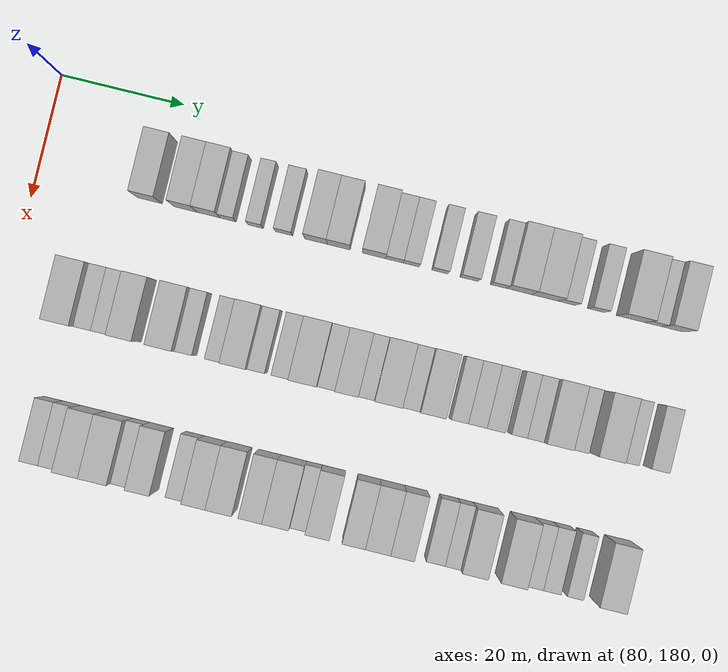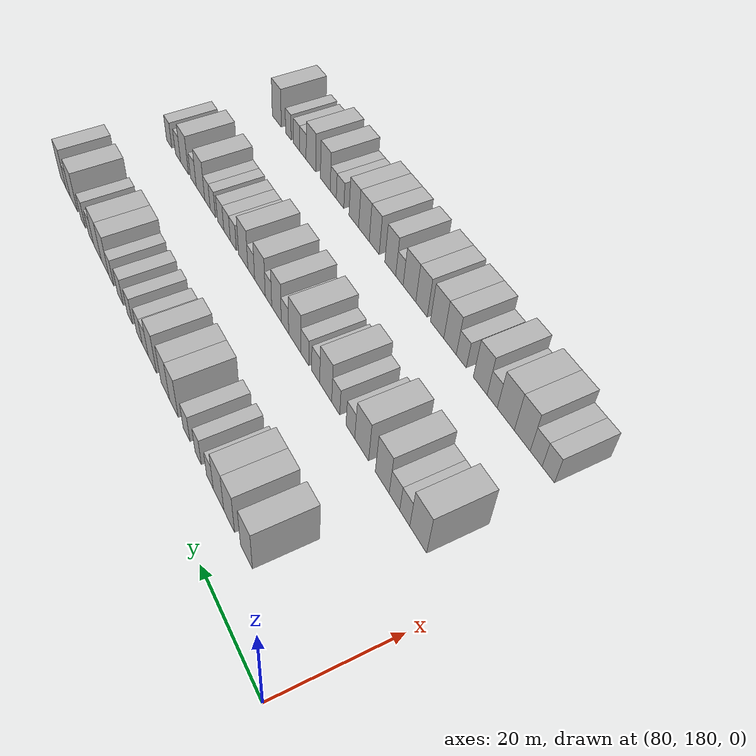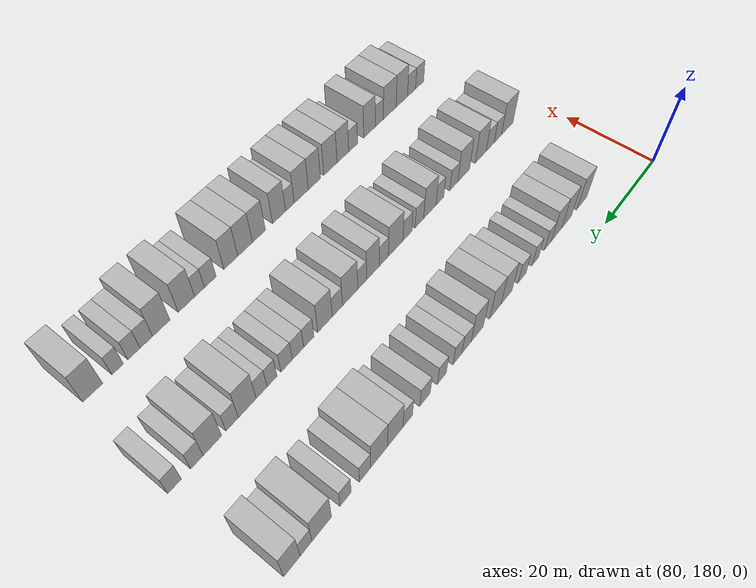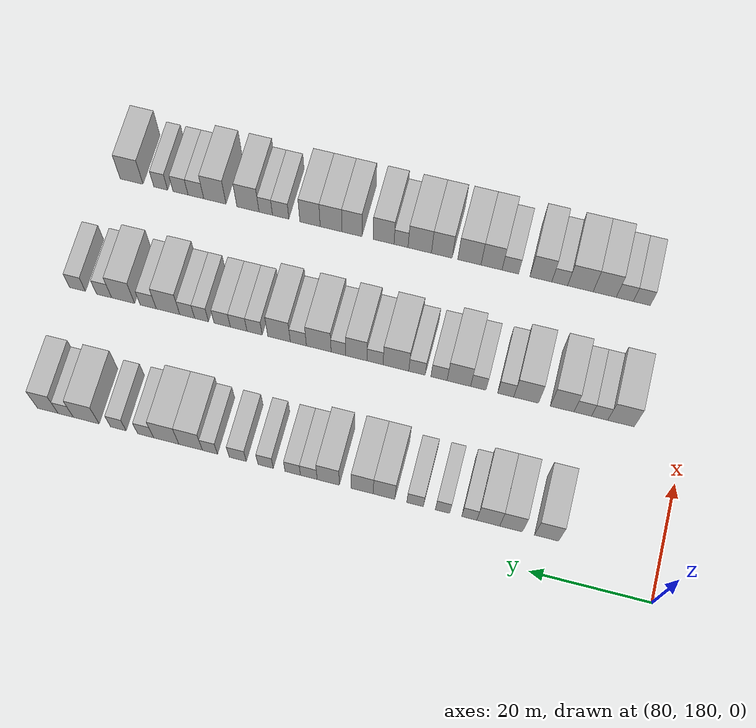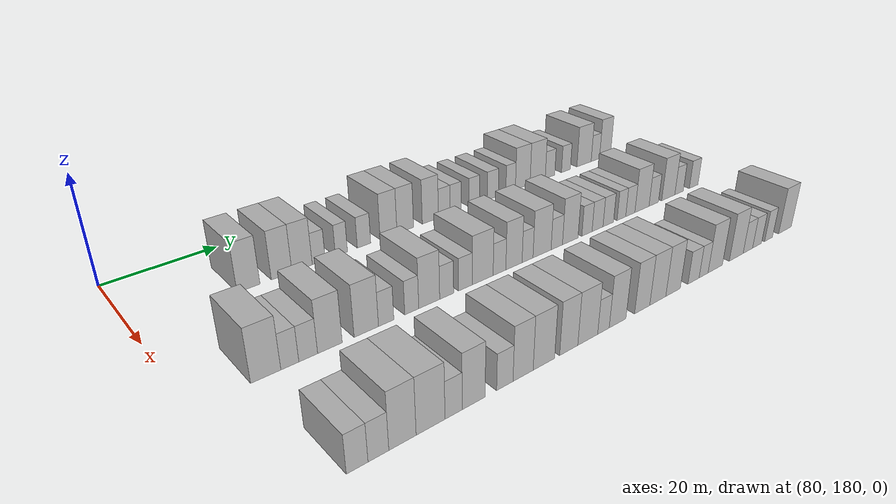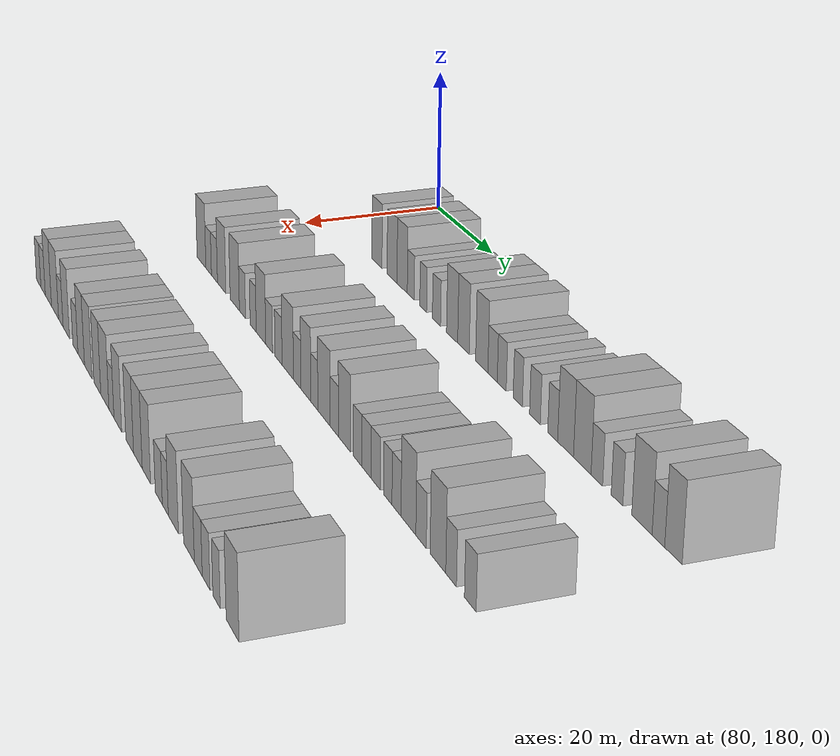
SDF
<sdf version="1.6">
 <world name="default">
  <model name="building_725">
   <static>1</static>
   <pose>91.0000 198.4446 0 0.000000 0.000000 0.000000</pose>
   <link name="link">
    <pose>0 0 4.50 0 0 0</pose>
    <collision name="collision"><geometry><box><size>10.0000 3.9656 9.0000</size></box></geometry></collision>
    <visual name="visual">
     <cast_shadows>0</cast_shadows>
     <geometry><box><size>10.0000 3.9656 9.0000</size></box></geometry>
     <material>
      <script>
       <uri>model://HANNAS_wall/materials/scripts</uri>
       <uri>model://HANNAS_wall/materials/textures</uri>
       <name>vrc/HANNAS_wall</name>
      </script>
     </material>
    </visual>
   </link>
  </model>
  <model name="building_726">
   <static>1</static>
   <pose>91.0000 204.3046 0 0.000000 0.000000 0.000000</pose>
   <link name="link">
    <pose>0 0 4.50 0 0 0</pose>
    <collision name="collision"><geometry><box><size>10.0000 3.7544 9.0000</size></box></geometry></collision>
    <visual name="visual">
     <cast_shadows>0</cast_shadows>
     <geometry><box><size>10.0000 3.7544 9.0000</size></box></geometry>
     <material>
      <script>
       <uri>model://HANNAS_wall/materials/scripts</uri>
       <uri>model://HANNAS_wall/materials/textures</uri>
       <name>vrc/HANNAS_wall</name>
      </script>
     </material>
    </visual>
   </link>
  </model>
  <model name="building_727">
   <static>1</static>
   <pose>91.0000 208.0827 0 0.000000 0.000000 0.000000</pose>
   <link name="link">
    <pose>0 0 4.50 0 0 0</pose>
    <collision name="collision"><geometry><box><size>10.0000 3.8017 9.0000</size></box></geometry></collision>
    <visual name="visual">
     <cast_shadows>0</cast_shadows>
     <geometry><box><size>10.0000 3.8017 9.0000</size></box></geometry>
     <material>
      <script>
       <uri>model://HANNAS_wall/materials/scripts</uri>
       <uri>model://HANNAS_wall/materials/textures</uri>
       <name>vrc/HANNAS_wall</name>
      </script>
     </material>
    </visual>
   </link>
  </model>
  <model name="building_728">
   <static>1</static>
   <pose>91.0000 211.2401 0 0.000000 0.000000 0.000000</pose>
   <link name="link">
    <pose>0 0 3.00 0 0 0</pose>
    <collision name="collision"><geometry><box><size>10.0000 2.5131 6.0000</size></box></geometry></collision>
    <visual name="visual">
     <cast_shadows>0</cast_shadows>
     <geometry><box><size>10.0000 2.5131 6.0000</size></box></geometry>
     <material>
      <script>
       <uri>model://HANNAS_wall/materials/scripts</uri>
       <uri>model://HANNAS_wall/materials/textures</uri>
       <name>vrc/HANNAS_wall</name>
      </script>
     </material>
    </visual>
   </link>
  </model>
  <model name="building_729">
   <static>1</static>
   <pose>91.0000 215.7001 0 0.000000 0.000000 0.000000</pose>
   <link name="link">
    <pose>0 0 3.00 0 0 0</pose>
    <collision name="collision"><geometry><box><size>10.0000 2.4068 6.0000</size></box></geometry></collision>
    <visual name="visual">
     <cast_shadows>0</cast_shadows>
     <geometry><box><size>10.0000 2.4068 6.0000</size></box></geometry>
     <material>
      <script>
       <uri>model://HANNAS_wall/materials/scripts</uri>
       <uri>model://HANNAS_wall/materials/textures</uri>
       <name>vrc/HANNAS_wall</name>
      </script>
     </material>
    </visual>
   </link>
  </model>
  <model name="building_730">
   <static>1</static>
   <pose>91.0000 220.2960 0 0.000000 0.000000 0.000000</pose>
   <link name="link">
    <pose>0 0 3.00 0 0 0</pose>
    <collision name="collision"><geometry><box><size>10.0000 2.7852 6.0000</size></box></geometry></collision>
    <visual name="visual">
     <cast_shadows>0</cast_shadows>
     <geometry><box><size>10.0000 2.7852 6.0000</size></box></geometry>
     <material>
      <script>
       <uri>model://HANNAS_wall/materials/scripts</uri>
       <uri>model://HANNAS_wall/materials/textures</uri>
       <name>vrc/HANNAS_wall</name>
      </script>
     </material>
    </visual>
   </link>
  </model>
  <model name="building_731">
   <static>1</static>
   <pose>91.0000 225.5138 0 0.000000 0.000000 0.000000</pose>
   <link name="link">
    <pose>0 0 4.50 0 0 0</pose>
    <collision name="collision"><geometry><box><size>10.0000 3.6503 9.0000</size></box></geometry></collision>
    <visual name="visual">
     <cast_shadows>0</cast_shadows>
     <geometry><box><size>10.0000 3.6503 9.0000</size></box></geometry>
     <material>
      <script>
       <uri>model://HANNAS_wall/materials/scripts</uri>
       <uri>model://HANNAS_wall/materials/textures</uri>
       <name>vrc/HANNAS_wall</name>
      </script>
     </material>
    </visual>
   </link>
  </model>
  <model name="building_732">
   <static>1</static>
   <pose>91.0000 229.1886 0 0.000000 0.000000 0.000000</pose>
   <link name="link">
    <pose>0 0 4.50 0 0 0</pose>
    <collision name="collision"><geometry><box><size>10.0000 3.6993 9.0000</size></box></geometry></collision>
    <visual name="visual">
     <cast_shadows>0</cast_shadows>
     <geometry><box><size>10.0000 3.6993 9.0000</size></box></geometry>
     <material>
      <script>
       <uri>model://HANNAS_wall/materials/scripts</uri>
       <uri>model://HANNAS_wall/materials/textures</uri>
       <name>vrc/HANNAS_wall</name>
      </script>
     </material>
    </visual>
   </link>
  </model>
  <model name="building_733">
   <static>1</static>
   <pose>91.0000 234.9215 0 0.000000 0.000000 0.000000</pose>
   <link name="link">
    <pose>0 0 4.50 0 0 0</pose>
    <collision name="collision"><geometry><box><size>10.0000 3.7665 9.0000</size></box></geometry></collision>
    <visual name="visual">
     <cast_shadows>0</cast_shadows>
     <geometry><box><size>10.0000 3.7665 9.0000</size></box></geometry>
     <material>
      <script>
       <uri>model://HANNAS_wall/materials/scripts</uri>
       <uri>model://HANNAS_wall/materials/textures</uri>
       <name>vrc/HANNAS_wall</name>
      </script>
     </material>
    </visual>
   </link>
  </model>
  <model name="building_734">
   <static>1</static>
   <pose>91.0000 238.2149 0 0.000000 0.000000 0.000000</pose>
   <link name="link">
    <pose>0 0 3.00 0 0 0</pose>
    <collision name="collision"><geometry><box><size>10.0000 2.8202 6.0000</size></box></geometry></collision>
    <visual name="visual">
     <cast_shadows>0</cast_shadows>
     <geometry><box><size>10.0000 2.8202 6.0000</size></box></geometry>
     <material>
      <script>
       <uri>model://HANNAS_wall/materials/scripts</uri>
       <uri>model://HANNAS_wall/materials/textures</uri>
       <name>vrc/HANNAS_wall</name>
      </script>
     </material>
    </visual>
   </link>
  </model>
  <model name="building_735">
   <static>1</static>
   <pose>91.0000 240.9437 0 0.000000 0.000000 0.000000</pose>
   <link name="link">
    <pose>0 0 3.00 0 0 0</pose>
    <collision name="collision"><geometry><box><size>10.0000 2.6375 6.0000</size></box></geometry></collision>
    <visual name="visual">
     <cast_shadows>0</cast_shadows>
     <geometry><box><size>10.0000 2.6375 6.0000</size></box></geometry>
     <material>
      <script>
       <uri>model://HANNAS_wall/materials/scripts</uri>
       <uri>model://HANNAS_wall/materials/textures</uri>
       <name>vrc/HANNAS_wall</name>
      </script>
     </material>
    </visual>
   </link>
  </model>
  <model name="building_736">
   <static>1</static>
   <pose>91.0000 245.5686 0 0.000000 0.000000 0.000000</pose>
   <link name="link">
    <pose>0 0 3.00 0 0 0</pose>
    <collision name="collision"><geometry><box><size>10.0000 2.6123 6.0000</size></box></geometry></collision>
    <visual name="visual">
     <cast_shadows>0</cast_shadows>
     <geometry><box><size>10.0000 2.6123 6.0000</size></box></geometry>
     <material>
      <script>
       <uri>model://HANNAS_wall/materials/scripts</uri>
       <uri>model://HANNAS_wall/materials/textures</uri>
       <name>vrc/HANNAS_wall</name>
      </script>
     </material>
    </visual>
   </link>
  </model>
  <model name="building_737">
   <static>1</static>
   <pose>91.0000 250.3436 0 0.000000 0.000000 0.000000</pose>
   <link name="link">
    <pose>0 0 3.00 0 0 0</pose>
    <collision name="collision"><geometry><box><size>10.0000 2.9376 6.0000</size></box></geometry></collision>
    <visual name="visual">
     <cast_shadows>0</cast_shadows>
     <geometry><box><size>10.0000 2.9376 6.0000</size></box></geometry>
     <material>
      <script>
       <uri>model://HANNAS_wall/materials/scripts</uri>
       <uri>model://HANNAS_wall/materials/textures</uri>
       <name>vrc/HANNAS_wall</name>
      </script>
     </material>
    </visual>
   </link>
  </model>
  <model name="building_738">
   <static>1</static>
   <pose>91.0000 255.1089 0 0.000000 0.000000 0.000000</pose>
   <link name="link">
    <pose>0 0 3.00 0 0 0</pose>
    <collision name="collision"><geometry><box><size>10.0000 2.5930 6.0000</size></box></geometry></collision>
    <visual name="visual">
     <cast_shadows>0</cast_shadows>
     <geometry><box><size>10.0000 2.5930 6.0000</size></box></geometry>
     <material>
      <script>
       <uri>model://HANNAS_wall/materials/scripts</uri>
       <uri>model://HANNAS_wall/materials/textures</uri>
       <name>vrc/HANNAS_wall</name>
      </script>
     </material>
    </visual>
   </link>
  </model>
  <model name="building_739">
   <static>1</static>
   <pose>91.0000 258.4398 0 0.000000 0.000000 0.000000</pose>
   <link name="link">
    <pose>0 0 4.50 0 0 0</pose>
    <collision name="collision"><geometry><box><size>10.0000 4.0688 9.0000</size></box></geometry></collision>
    <visual name="visual">
     <cast_shadows>0</cast_shadows>
     <geometry><box><size>10.0000 4.0688 9.0000</size></box></geometry>
     <material>
      <script>
       <uri>model://HANNAS_wall/materials/scripts</uri>
       <uri>model://HANNAS_wall/materials/textures</uri>
       <name>vrc/HANNAS_wall</name>
      </script>
     </material>
    </visual>
   </link>
  </model>
  <model name="building_740">
   <static>1</static>
   <pose>91.0000 262.6507 0 0.000000 0.000000 0.000000</pose>
   <link name="link">
    <pose>0 0 4.50 0 0 0</pose>
    <collision name="collision"><geometry><box><size>10.0000 4.3530 9.0000</size></box></geometry></collision>
    <visual name="visual">
     <cast_shadows>0</cast_shadows>
     <geometry><box><size>10.0000 4.3530 9.0000</size></box></geometry>
     <material>
      <script>
       <uri>model://HANNAS_wall/materials/scripts</uri>
       <uri>model://HANNAS_wall/materials/textures</uri>
       <name>vrc/HANNAS_wall</name>
      </script>
     </material>
    </visual>
   </link>
  </model>
  <model name="building_741">
   <static>1</static>
   <pose>91.0000 266.2208 0 0.000000 0.000000 0.000000</pose>
   <link name="link">
    <pose>0 0 3.00 0 0 0</pose>
    <collision name="collision"><geometry><box><size>10.0000 2.7873 6.0000</size></box></geometry></collision>
    <visual name="visual">
     <cast_shadows>0</cast_shadows>
     <geometry><box><size>10.0000 2.7873 6.0000</size></box></geometry>
     <material>
      <script>
       <uri>model://HANNAS_wall/materials/scripts</uri>
       <uri>model://HANNAS_wall/materials/textures</uri>
       <name>vrc/HANNAS_wall</name>
      </script>
     </material>
    </visual>
   </link>
  </model>
  <model name="building_742">
   <static>1</static>
   <pose>91.0000 270.9695 0 0.000000 0.000000 0.000000</pose>
   <link name="link">
    <pose>0 0 3.00 0 0 0</pose>
    <collision name="collision"><geometry><box><size>10.0000 2.7102 6.0000</size></box></geometry></collision>
    <visual name="visual">
     <cast_shadows>0</cast_shadows>
     <geometry><box><size>10.0000 2.7102 6.0000</size></box></geometry>
     <material>
      <script>
       <uri>model://HANNAS_wall/materials/scripts</uri>
       <uri>model://HANNAS_wall/materials/textures</uri>
       <name>vrc/HANNAS_wall</name>
      </script>
     </material>
    </visual>
   </link>
  </model>
  <model name="building_743">
   <static>1</static>
   <pose>91.0000 276.5693 0 0.000000 0.000000 0.000000</pose>
   <link name="link">
    <pose>0 0 4.50 0 0 0</pose>
    <collision name="collision"><geometry><box><size>10.0000 4.4894 9.0000</size></box></geometry></collision>
    <visual name="visual">
     <cast_shadows>0</cast_shadows>
     <geometry><box><size>10.0000 4.4894 9.0000</size></box></geometry>
     <material>
      <script>
       <uri>model://HANNAS_wall/materials/scripts</uri>
       <uri>model://HANNAS_wall/materials/textures</uri>
       <name>vrc/HANNAS_wall</name>
      </script>
     </material>
    </visual>
   </link>
  </model>
  <model name="building_744">
   <static>1</static>
   <pose>91.0000 280.1538 0 0.000000 0.000000 0.000000</pose>
   <link name="link">
    <pose>0 0 3.00 0 0 0</pose>
    <collision name="collision"><geometry><box><size>10.0000 2.6796 6.0000</size></box></geometry></collision>
    <visual name="visual">
     <cast_shadows>0</cast_shadows>
     <geometry><box><size>10.0000 2.6796 6.0000</size></box></geometry>
     <material>
      <script>
       <uri>model://HANNAS_wall/materials/scripts</uri>
       <uri>model://HANNAS_wall/materials/textures</uri>
       <name>vrc/HANNAS_wall</name>
      </script>
     </material>
    </visual>
   </link>
  </model>
  <model name="building_745">
   <static>1</static>
   <pose>91.0000 283.3071 0 0.000000 0.000000 0.000000</pose>
   <link name="link">
    <pose>0 0 4.50 0 0 0</pose>
    <collision name="collision"><geometry><box><size>10.0000 3.6269 9.0000</size></box></geometry></collision>
    <visual name="visual">
     <cast_shadows>0</cast_shadows>
     <geometry><box><size>10.0000 3.6269 9.0000</size></box></geometry>
     <material>
      <script>
       <uri>model://HANNAS_wall/materials/scripts</uri>
       <uri>model://HANNAS_wall/materials/textures</uri>
       <name>vrc/HANNAS_wall</name>
      </script>
     </material>
    </visual>
   </link>
  </model>
  <model name="building_904">
   <static>1</static>
   <pose>113.0000 190.4976 0 0.000000 0.000000 0.000000</pose>
   <link name="link">
    <pose>0 0 4.50 0 0 0</pose>
    <collision name="collision"><geometry><box><size>10.0000 4.4730 9.0000</size></box></geometry></collision>
    <visual name="visual">
     <cast_shadows>0</cast_shadows>
     <geometry><box><size>10.0000 4.4730 9.0000</size></box></geometry>
     <material>
      <script>
       <uri>model://HANNAS_wall/materials/scripts</uri>
       <uri>model://HANNAS_wall/materials/textures</uri>
       <name>vrc/HANNAS_wall</name>
      </script>
     </material>
    </visual>
   </link>
  </model>
  <model name="building_905">
   <static>1</static>
   <pose>113.0000 194.1137 0 0.000000 0.000000 0.000000</pose>
   <link name="link">
    <pose>0 0 3.00 0 0 0</pose>
    <collision name="collision"><geometry><box><size>10.0000 2.7592 6.0000</size></box></geometry></collision>
    <visual name="visual">
     <cast_shadows>0</cast_shadows>
     <geometry><box><size>10.0000 2.7592 6.0000</size></box></geometry>
     <material>
      <script>
       <uri>model://HANNAS_wall/materials/scripts</uri>
       <uri>model://HANNAS_wall/materials/textures</uri>
       <name>vrc/HANNAS_wall</name>
      </script>
     </material>
    </visual>
   </link>
  </model>
  <model name="building_906">
   <static>1</static>
   <pose>113.0000 196.9742 0 0.000000 0.000000 0.000000</pose>
   <link name="link">
    <pose>0 0 3.00 0 0 0</pose>
    <collision name="collision"><geometry><box><size>10.0000 2.9618 6.0000</size></box></geometry></collision>
    <visual name="visual">
     <cast_shadows>0</cast_shadows>
     <geometry><box><size>10.0000 2.9618 6.0000</size></box></geometry>
     <material>
      <script>
       <uri>model://HANNAS_wall/materials/scripts</uri>
       <uri>model://HANNAS_wall/materials/textures</uri>
       <name>vrc/HANNAS_wall</name>
      </script>
     </material>
    </visual>
   </link>
  </model>
  <model name="building_907">
   <static>1</static>
   <pose>113.0000 200.4675 0 0.000000 0.000000 0.000000</pose>
   <link name="link">
    <pose>0 0 4.50 0 0 0</pose>
    <collision name="collision"><geometry><box><size>10.0000 4.0248 9.0000</size></box></geometry></collision>
    <visual name="visual">
     <cast_shadows>0</cast_shadows>
     <geometry><box><size>10.0000 4.0248 9.0000</size></box></geometry>
     <material>
      <script>
       <uri>model://HANNAS_wall/materials/scripts</uri>
       <uri>model://HANNAS_wall/materials/textures</uri>
       <name>vrc/HANNAS_wall</name>
      </script>
     </material>
    </visual>
   </link>
  </model>
  <model name="building_908">
   <static>1</static>
   <pose>113.0000 206.6000 0 0.000000 0.000000 0.000000</pose>
   <link name="link">
    <pose>0 0 4.50 0 0 0</pose>
    <collision name="collision"><geometry><box><size>10.0000 4.2402 9.0000</size></box></geometry></collision>
    <visual name="visual">
     <cast_shadows>0</cast_shadows>
     <geometry><box><size>10.0000 4.2402 9.0000</size></box></geometry>
     <material>
      <script>
       <uri>model://HANNAS_wall/materials/scripts</uri>
       <uri>model://HANNAS_wall/materials/textures</uri>
       <name>vrc/HANNAS_wall</name>
      </script>
     </material>
    </visual>
   </link>
  </model>
  <model name="building_909">
   <static>1</static>
   <pose>113.0000 210.0994 0 0.000000 0.000000 0.000000</pose>
   <link name="link">
    <pose>0 0 3.00 0 0 0</pose>
    <collision name="collision"><geometry><box><size>10.0000 2.7586 6.0000</size></box></geometry></collision>
    <visual name="visual">
     <cast_shadows>0</cast_shadows>
     <geometry><box><size>10.0000 2.7586 6.0000</size></box></geometry>
     <material>
      <script>
       <uri>model://HANNAS_wall/materials/scripts</uri>
       <uri>model://HANNAS_wall/materials/textures</uri>
       <name>vrc/HANNAS_wall</name>
      </script>
     </material>
    </visual>
   </link>
  </model>
  <model name="building_910">
   <static>1</static>
   <pose>113.0000 214.8007 0 0.000000 0.000000 0.000000</pose>
   <link name="link">
    <pose>0 0 3.00 0 0 0</pose>
    <collision name="collision"><geometry><box><size>10.0000 2.6440 6.0000</size></box></geometry></collision>
    <visual name="visual">
     <cast_shadows>0</cast_shadows>
     <geometry><box><size>10.0000 2.6440 6.0000</size></box></geometry>
     <material>
      <script>
       <uri>model://HANNAS_wall/materials/scripts</uri>
       <uri>model://HANNAS_wall/materials/textures</uri>
       <name>vrc/HANNAS_wall</name>
      </script>
     </material>
    </visual>
   </link>
  </model>
  <model name="building_911">
   <static>1</static>
   <pose>113.0000 218.1511 0 0.000000 0.000000 0.000000</pose>
   <link name="link">
    <pose>0 0 4.50 0 0 0</pose>
    <collision name="collision"><geometry><box><size>10.0000 4.0568 9.0000</size></box></geometry></collision>
    <visual name="visual">
     <cast_shadows>0</cast_shadows>
     <geometry><box><size>10.0000 4.0568 9.0000</size></box></geometry>
     <material>
      <script>
       <uri>model://HANNAS_wall/materials/scripts</uri>
       <uri>model://HANNAS_wall/materials/textures</uri>
       <name>vrc/HANNAS_wall</name>
      </script>
     </material>
    </visual>
   </link>
  </model>
  <model name="building_912">
   <static>1</static>
   <pose>113.0000 221.5752 0 0.000000 0.000000 0.000000</pose>
   <link name="link">
    <pose>0 0 3.00 0 0 0</pose>
    <collision name="collision"><geometry><box><size>10.0000 2.7915 6.0000</size></box></geometry></collision>
    <visual name="visual">
     <cast_shadows>0</cast_shadows>
     <geometry><box><size>10.0000 2.7915 6.0000</size></box></geometry>
     <material>
      <script>
       <uri>model://HANNAS_wall/materials/scripts</uri>
       <uri>model://HANNAS_wall/materials/textures</uri>
       <name>vrc/HANNAS_wall</name>
      </script>
     </material>
    </visual>
   </link>
  </model>
  <model name="building_913">
   <static>1</static>
   <pose>113.0000 225.3942 0 0.000000 0.000000 0.000000</pose>
   <link name="link">
    <pose>0 0 3.00 0 0 0</pose>
    <collision name="collision"><geometry><box><size>10.0000 2.8465 6.0000</size></box></geometry></collision>
    <visual name="visual">
     <cast_shadows>0</cast_shadows>
     <geometry><box><size>10.0000 2.8465 6.0000</size></box></geometry>
     <material>
      <script>
       <uri>model://HANNAS_wall/materials/scripts</uri>
       <uri>model://HANNAS_wall/materials/textures</uri>
       <name>vrc/HANNAS_wall</name>
      </script>
     </material>
    </visual>
   </link>
  </model>
  <model name="building_914">
   <static>1</static>
   <pose>113.0000 229.0496 0 0.000000 0.000000 0.000000</pose>
   <link name="link">
    <pose>0 0 4.50 0 0 0</pose>
    <collision name="collision"><geometry><box><size>10.0000 4.4642 9.0000</size></box></geometry></collision>
    <visual name="visual">
     <cast_shadows>0</cast_shadows>
     <geometry><box><size>10.0000 4.4642 9.0000</size></box></geometry>
     <material>
      <script>
       <uri>model://HANNAS_wall/materials/scripts</uri>
       <uri>model://HANNAS_wall/materials/textures</uri>
       <name>vrc/HANNAS_wall</name>
      </script>
     </material>
    </visual>
   </link>
  </model>
  <model name="building_915">
   <static>1</static>
   <pose>113.0000 232.6850 0 0.000000 0.000000 0.000000</pose>
   <link name="link">
    <pose>0 0 3.00 0 0 0</pose>
    <collision name="collision"><geometry><box><size>10.0000 2.8066 6.0000</size></box></geometry></collision>
    <visual name="visual">
     <cast_shadows>0</cast_shadows>
     <geometry><box><size>10.0000 2.8066 6.0000</size></box></geometry>
     <material>
      <script>
       <uri>model://HANNAS_wall/materials/scripts</uri>
       <uri>model://HANNAS_wall/materials/textures</uri>
       <name>vrc/HANNAS_wall</name>
      </script>
     </material>
    </visual>
   </link>
  </model>
  <model name="building_916">
   <static>1</static>
   <pose>113.0000 235.9343 0 0.000000 0.000000 0.000000</pose>
   <link name="link">
    <pose>0 0 4.50 0 0 0</pose>
    <collision name="collision"><geometry><box><size>10.0000 3.6921 9.0000</size></box></geometry></collision>
    <visual name="visual">
     <cast_shadows>0</cast_shadows>
     <geometry><box><size>10.0000 3.6921 9.0000</size></box></geometry>
     <material>
      <script>
       <uri>model://HANNAS_wall/materials/scripts</uri>
       <uri>model://HANNAS_wall/materials/textures</uri>
       <name>vrc/HANNAS_wall</name>
      </script>
     </material>
    </visual>
   </link>
  </model>
  <model name="building_917">
   <static>1</static>
   <pose>113.0000 239.0591 0 0.000000 0.000000 0.000000</pose>
   <link name="link">
    <pose>0 0 3.00 0 0 0</pose>
    <collision name="collision"><geometry><box><size>10.0000 2.5575 6.0000</size></box></geometry></collision>
    <visual name="visual">
     <cast_shadows>0</cast_shadows>
     <geometry><box><size>10.0000 2.5575 6.0000</size></box></geometry>
     <material>
      <script>
       <uri>model://HANNAS_wall/materials/scripts</uri>
       <uri>model://HANNAS_wall/materials/textures</uri>
       <name>vrc/HANNAS_wall</name>
      </script>
     </material>
    </visual>
   </link>
  </model>
  <model name="building_918">
   <static>1</static>
   <pose>113.0000 242.5063 0 0.000000 0.000000 0.000000</pose>
   <link name="link">
    <pose>0 0 4.50 0 0 0</pose>
    <collision name="collision"><geometry><box><size>10.0000 4.3369 9.0000</size></box></geometry></collision>
    <visual name="visual">
     <cast_shadows>0</cast_shadows>
     <geometry><box><size>10.0000 4.3369 9.0000</size></box></geometry>
     <material>
      <script>
       <uri>model://HANNAS_wall/materials/scripts</uri>
       <uri>model://HANNAS_wall/materials/textures</uri>
       <name>vrc/HANNAS_wall</name>
      </script>
     </material>
    </visual>
   </link>
  </model>
  <model name="building_919">
   <static>1</static>
   <pose>113.0000 246.0868 0 0.000000 0.000000 0.000000</pose>
   <link name="link">
    <pose>0 0 3.00 0 0 0</pose>
    <collision name="collision"><geometry><box><size>10.0000 2.8242 6.0000</size></box></geometry></collision>
    <visual name="visual">
     <cast_shadows>0</cast_shadows>
     <geometry><box><size>10.0000 2.8242 6.0000</size></box></geometry>
     <material>
      <script>
       <uri>model://HANNAS_wall/materials/scripts</uri>
       <uri>model://HANNAS_wall/materials/textures</uri>
       <name>vrc/HANNAS_wall</name>
      </script>
     </material>
    </visual>
   </link>
  </model>
  <model name="building_920">
   <static>1</static>
   <pose>113.0000 249.4796 0 0.000000 0.000000 0.000000</pose>
   <link name="link">
    <pose>0 0 4.50 0 0 0</pose>
    <collision name="collision"><geometry><box><size>10.0000 3.9615 9.0000</size></box></geometry></collision>
    <visual name="visual">
     <cast_shadows>0</cast_shadows>
     <geometry><box><size>10.0000 3.9615 9.0000</size></box></geometry>
     <material>
      <script>
       <uri>model://HANNAS_wall/materials/scripts</uri>
       <uri>model://HANNAS_wall/materials/textures</uri>
       <name>vrc/HANNAS_wall</name>
      </script>
     </material>
    </visual>
   </link>
  </model>
  <model name="building_921">
   <static>1</static>
   <pose>113.0000 253.8057 0 0.000000 0.000000 0.000000</pose>
   <link name="link">
    <pose>0 0 3.00 0 0 0</pose>
    <collision name="collision"><geometry><box><size>10.0000 2.6906 6.0000</size></box></geometry></collision>
    <visual name="visual">
     <cast_shadows>0</cast_shadows>
     <geometry><box><size>10.0000 2.6906 6.0000</size></box></geometry>
     <material>
      <script>
       <uri>model://HANNAS_wall/materials/scripts</uri>
       <uri>model://HANNAS_wall/materials/textures</uri>
       <name>vrc/HANNAS_wall</name>
      </script>
     </material>
    </visual>
   </link>
  </model>
  <model name="building_922">
   <static>1</static>
   <pose>113.0000 256.6245 0 0.000000 0.000000 0.000000</pose>
   <link name="link">
    <pose>0 0 3.00 0 0 0</pose>
    <collision name="collision"><geometry><box><size>10.0000 2.9470 6.0000</size></box></geometry></collision>
    <visual name="visual">
     <cast_shadows>0</cast_shadows>
     <geometry><box><size>10.0000 2.9470 6.0000</size></box></geometry>
     <material>
      <script>
       <uri>model://HANNAS_wall/materials/scripts</uri>
       <uri>model://HANNAS_wall/materials/textures</uri>
       <name>vrc/HANNAS_wall</name>
      </script>
     </material>
    </visual>
   </link>
  </model>
  <model name="building_923">
   <static>1</static>
   <pose>113.0000 259.5412 0 0.000000 0.000000 0.000000</pose>
   <link name="link">
    <pose>0 0 3.00 0 0 0</pose>
    <collision name="collision"><geometry><box><size>10.0000 2.8863 6.0000</size></box></geometry></collision>
    <visual name="visual">
     <cast_shadows>0</cast_shadows>
     <geometry><box><size>10.0000 2.8863 6.0000</size></box></geometry>
     <material>
      <script>
       <uri>model://HANNAS_wall/materials/scripts</uri>
       <uri>model://HANNAS_wall/materials/textures</uri>
       <name>vrc/HANNAS_wall</name>
      </script>
     </material>
    </visual>
   </link>
  </model>
  <model name="building_924">
   <static>1</static>
   <pose>113.0000 263.2153 0 0.000000 0.000000 0.000000</pose>
   <link name="link">
    <pose>0 0 3.00 0 0 0</pose>
    <collision name="collision"><geometry><box><size>10.0000 2.4619 6.0000</size></box></geometry></collision>
    <visual name="visual">
     <cast_shadows>0</cast_shadows>
     <geometry><box><size>10.0000 2.4619 6.0000</size></box></geometry>
     <material>
      <script>
       <uri>model://HANNAS_wall/materials/scripts</uri>
       <uri>model://HANNAS_wall/materials/textures</uri>
       <name>vrc/HANNAS_wall</name>
      </script>
     </material>
    </visual>
   </link>
  </model>
  <model name="building_925">
   <static>1</static>
   <pose>113.0000 265.7690 0 0.000000 0.000000 0.000000</pose>
   <link name="link">
    <pose>0 0 3.00 0 0 0</pose>
    <collision name="collision"><geometry><box><size>10.0000 2.6456 6.0000</size></box></geometry></collision>
    <visual name="visual">
     <cast_shadows>0</cast_shadows>
     <geometry><box><size>10.0000 2.6456 6.0000</size></box></geometry>
     <material>
      <script>
       <uri>model://HANNAS_wall/materials/scripts</uri>
       <uri>model://HANNAS_wall/materials/textures</uri>
       <name>vrc/HANNAS_wall</name>
      </script>
     </material>
    </visual>
   </link>
  </model>
  <model name="building_926">
   <static>1</static>
   <pose>113.0000 269.1929 0 0.000000 0.000000 0.000000</pose>
   <link name="link">
    <pose>0 0 4.50 0 0 0</pose>
    <collision name="collision"><geometry><box><size>10.0000 4.2020 9.0000</size></box></geometry></collision>
    <visual name="visual">
     <cast_shadows>0</cast_shadows>
     <geometry><box><size>10.0000 4.2020 9.0000</size></box></geometry>
     <material>
      <script>
       <uri>model://HANNAS_wall/materials/scripts</uri>
       <uri>model://HANNAS_wall/materials/textures</uri>
       <name>vrc/HANNAS_wall</name>
      </script>
     </material>
    </visual>
   </link>
  </model>
  <model name="building_927">
   <static>1</static>
   <pose>113.0000 272.7364 0 0.000000 0.000000 0.000000</pose>
   <link name="link">
    <pose>0 0 3.00 0 0 0</pose>
    <collision name="collision"><geometry><box><size>10.0000 2.8851 6.0000</size></box></geometry></collision>
    <visual name="visual">
     <cast_shadows>0</cast_shadows>
     <geometry><box><size>10.0000 2.8851 6.0000</size></box></geometry>
     <material>
      <script>
       <uri>model://HANNAS_wall/materials/scripts</uri>
       <uri>model://HANNAS_wall/materials/textures</uri>
       <name>vrc/HANNAS_wall</name>
      </script>
     </material>
    </visual>
   </link>
  </model>
  <model name="building_928">
   <static>1</static>
   <pose>113.0000 277.2480 0 0.000000 0.000000 0.000000</pose>
   <link name="link">
    <pose>0 0 4.50 0 0 0</pose>
    <collision name="collision"><geometry><box><size>10.0000 4.1380 9.0000</size></box></geometry></collision>
    <visual name="visual">
     <cast_shadows>0</cast_shadows>
     <geometry><box><size>10.0000 4.1380 9.0000</size></box></geometry>
     <material>
      <script>
       <uri>model://HANNAS_wall/materials/scripts</uri>
       <uri>model://HANNAS_wall/materials/textures</uri>
       <name>vrc/HANNAS_wall</name>
      </script>
     </material>
    </visual>
   </link>
  </model>
  <model name="building_929">
   <static>1</static>
   <pose>113.0000 280.6820 0 0.000000 0.000000 0.000000</pose>
   <link name="link">
    <pose>0 0 3.00 0 0 0</pose>
    <collision name="collision"><geometry><box><size>10.0000 2.7301 6.0000</size></box></geometry></collision>
    <visual name="visual">
     <cast_shadows>0</cast_shadows>
     <geometry><box><size>10.0000 2.7301 6.0000</size></box></geometry>
     <material>
      <script>
       <uri>model://HANNAS_wall/materials/scripts</uri>
       <uri>model://HANNAS_wall/materials/textures</uri>
       <name>vrc/HANNAS_wall</name>
      </script>
     </material>
    </visual>
   </link>
  </model>
  <model name="building_930">
   <static>1</static>
   <pose>113.0000 285.4799 0 0.000000 0.000000 0.000000</pose>
   <link name="link">
    <pose>0 0 3.00 0 0 0</pose>
    <collision name="collision"><geometry><box><size>10.0000 2.8659 6.0000</size></box></geometry></collision>
    <visual name="visual">
     <cast_shadows>0</cast_shadows>
     <geometry><box><size>10.0000 2.8659 6.0000</size></box></geometry>
     <material>
      <script>
       <uri>model://HANNAS_wall/materials/scripts</uri>
       <uri>model://HANNAS_wall/materials/textures</uri>
       <name>vrc/HANNAS_wall</name>
      </script>
     </material>
    </visual>
   </link>
  </model>
  <model name="building_1103">
   <static>1</static>
   <pose>135.0000 191.1361 0 0.000000 0.000000 0.000000</pose>
   <link name="link">
    <pose>0 0 3.00 0 0 0</pose>
    <collision name="collision"><geometry><box><size>10.0000 2.9797 6.0000</size></box></geometry></collision>
    <visual name="visual">
     <cast_shadows>0</cast_shadows>
     <geometry><box><size>10.0000 2.9797 6.0000</size></box></geometry>
     <material>
      <script>
       <uri>model://HANNAS_wall/materials/scripts</uri>
       <uri>model://HANNAS_wall/materials/textures</uri>
       <name>vrc/HANNAS_wall</name>
      </script>
     </material>
    </visual>
   </link>
  </model>
  <model name="building_1104">
   <static>1</static>
   <pose>135.0000 194.1000 0 0.000000 0.000000 0.000000</pose>
   <link name="link">
    <pose>0 0 3.00 0 0 0</pose>
    <collision name="collision"><geometry><box><size>10.0000 2.9482 6.0000</size></box></geometry></collision>
    <visual name="visual">
     <cast_shadows>0</cast_shadows>
     <geometry><box><size>10.0000 2.9482 6.0000</size></box></geometry>
     <material>
      <script>
       <uri>model://HANNAS_wall/materials/scripts</uri>
       <uri>model://HANNAS_wall/materials/textures</uri>
       <name>vrc/HANNAS_wall</name>
      </script>
     </material>
    </visual>
   </link>
  </model>
  <model name="building_1105">
   <static>1</static>
   <pose>135.0000 197.5936 0 0.000000 0.000000 0.000000</pose>
   <link name="link">
    <pose>0 0 4.50 0 0 0</pose>
    <collision name="collision"><geometry><box><size>10.0000 4.0389 9.0000</size></box></geometry></collision>
    <visual name="visual">
     <cast_shadows>0</cast_shadows>
     <geometry><box><size>10.0000 4.0389 9.0000</size></box></geometry>
     <material>
      <script>
       <uri>model://HANNAS_wall/materials/scripts</uri>
       <uri>model://HANNAS_wall/materials/textures</uri>
       <name>vrc/HANNAS_wall</name>
      </script>
     </material>
    </visual>
   </link>
  </model>
  <model name="building_1106">
   <static>1</static>
   <pose>135.0000 201.8562 0 0.000000 0.000000 0.000000</pose>
   <link name="link">
    <pose>0 0 4.50 0 0 0</pose>
    <collision name="collision"><geometry><box><size>10.0000 4.4863 9.0000</size></box></geometry></collision>
    <visual name="visual">
     <cast_shadows>0</cast_shadows>
     <geometry><box><size>10.0000 4.4863 9.0000</size></box></geometry>
     <material>
      <script>
       <uri>model://HANNAS_wall/materials/scripts</uri>
       <uri>model://HANNAS_wall/materials/textures</uri>
       <name>vrc/HANNAS_wall</name>
      </script>
     </material>
    </visual>
   </link>
  </model>
  <model name="building_1107">
   <static>1</static>
   <pose>135.0000 205.4877 0 0.000000 0.000000 0.000000</pose>
   <link name="link">
    <pose>0 0 3.00 0 0 0</pose>
    <collision name="collision"><geometry><box><size>10.0000 2.7768 6.0000</size></box></geometry></collision>
    <visual name="visual">
     <cast_shadows>0</cast_shadows>
     <geometry><box><size>10.0000 2.7768 6.0000</size></box></geometry>
     <material>
      <script>
       <uri>model://HANNAS_wall/materials/scripts</uri>
       <uri>model://HANNAS_wall/materials/textures</uri>
       <name>vrc/HANNAS_wall</name>
      </script>
     </material>
    </visual>
   </link>
  </model>
  <model name="building_1108">
   <static>1</static>
   <pose>135.0000 208.8071 0 0.000000 0.000000 0.000000</pose>
   <link name="link">
    <pose>0 0 4.50 0 0 0</pose>
    <collision name="collision"><geometry><box><size>10.0000 3.8620 9.0000</size></box></geometry></collision>
    <visual name="visual">
     <cast_shadows>0</cast_shadows>
     <geometry><box><size>10.0000 3.8620 9.0000</size></box></geometry>
     <material>
      <script>
       <uri>model://HANNAS_wall/materials/scripts</uri>
       <uri>model://HANNAS_wall/materials/textures</uri>
       <name>vrc/HANNAS_wall</name>
      </script>
     </material>
    </visual>
   </link>
  </model>
  <model name="building_1109">
   <static>1</static>
   <pose>135.0000 214.2015 0 0.000000 0.000000 0.000000</pose>
   <link name="link">
    <pose>0 0 3.00 0 0 0</pose>
    <collision name="collision"><geometry><box><size>10.0000 2.9267 6.0000</size></box></geometry></collision>
    <visual name="visual">
     <cast_shadows>0</cast_shadows>
     <geometry><box><size>10.0000 2.9267 6.0000</size></box></geometry>
     <material>
      <script>
       <uri>model://HANNAS_wall/materials/scripts</uri>
       <uri>model://HANNAS_wall/materials/textures</uri>
       <name>vrc/HANNAS_wall</name>
      </script>
     </material>
    </visual>
   </link>
  </model>
  <model name="building_1110">
   <static>1</static>
   <pose>135.0000 217.5289 0 0.000000 0.000000 0.000000</pose>
   <link name="link">
    <pose>0 0 4.50 0 0 0</pose>
    <collision name="collision"><geometry><box><size>10.0000 3.7282 9.0000</size></box></geometry></collision>
    <visual name="visual">
     <cast_shadows>0</cast_shadows>
     <geometry><box><size>10.0000 3.7282 9.0000</size></box></geometry>
     <material>
      <script>
       <uri>model://HANNAS_wall/materials/scripts</uri>
       <uri>model://HANNAS_wall/materials/textures</uri>
       <name>vrc/HANNAS_wall</name>
      </script>
     </material>
    </visual>
   </link>
  </model>
  <model name="building_1111">
   <static>1</static>
   <pose>135.0000 221.4575 0 0.000000 0.000000 0.000000</pose>
   <link name="link">
    <pose>0 0 4.50 0 0 0</pose>
    <collision name="collision"><geometry><box><size>10.0000 4.1290 9.0000</size></box></geometry></collision>
    <visual name="visual">
     <cast_shadows>0</cast_shadows>
     <geometry><box><size>10.0000 4.1290 9.0000</size></box></geometry>
     <material>
      <script>
       <uri>model://HANNAS_wall/materials/scripts</uri>
       <uri>model://HANNAS_wall/materials/textures</uri>
       <name>vrc/HANNAS_wall</name>
      </script>
     </material>
    </visual>
   </link>
  </model>
  <model name="building_1112">
   <static>1</static>
   <pose>135.0000 226.3667 0 0.000000 0.000000 0.000000</pose>
   <link name="link">
    <pose>0 0 4.50 0 0 0</pose>
    <collision name="collision"><geometry><box><size>10.0000 3.6893 9.0000</size></box></geometry></collision>
    <visual name="visual">
     <cast_shadows>0</cast_shadows>
     <geometry><box><size>10.0000 3.6893 9.0000</size></box></geometry>
     <material>
      <script>
       <uri>model://HANNAS_wall/materials/scripts</uri>
       <uri>model://HANNAS_wall/materials/textures</uri>
       <name>vrc/HANNAS_wall</name>
      </script>
     </material>
    </visual>
   </link>
  </model>
  <model name="building_1113">
   <static>1</static>
   <pose>135.0000 230.3043 0 0.000000 0.000000 0.000000</pose>
   <link name="link">
    <pose>0 0 4.50 0 0 0</pose>
    <collision name="collision"><geometry><box><size>10.0000 4.1859 9.0000</size></box></geometry></collision>
    <visual name="visual">
     <cast_shadows>0</cast_shadows>
     <geometry><box><size>10.0000 4.1859 9.0000</size></box></geometry>
     <material>
      <script>
       <uri>model://HANNAS_wall/materials/scripts</uri>
       <uri>model://HANNAS_wall/materials/textures</uri>
       <name>vrc/HANNAS_wall</name>
      </script>
     </material>
    </visual>
   </link>
  </model>
  <model name="building_1114">
   <static>1</static>
   <pose>135.0000 233.6551 0 0.000000 0.000000 0.000000</pose>
   <link name="link">
    <pose>0 0 3.00 0 0 0</pose>
    <collision name="collision"><geometry><box><size>10.0000 2.5156 6.0000</size></box></geometry></collision>
    <visual name="visual">
     <cast_shadows>0</cast_shadows>
     <geometry><box><size>10.0000 2.5156 6.0000</size></box></geometry>
     <material>
      <script>
       <uri>model://HANNAS_wall/materials/scripts</uri>
       <uri>model://HANNAS_wall/materials/textures</uri>
       <name>vrc/HANNAS_wall</name>
      </script>
     </material>
    </visual>
   </link>
  </model>
  <model name="building_1115">
   <static>1</static>
   <pose>135.0000 236.7977 0 0.000000 0.000000 0.000000</pose>
   <link name="link">
    <pose>0 0 4.50 0 0 0</pose>
    <collision name="collision"><geometry><box><size>10.0000 3.7697 9.0000</size></box></geometry></collision>
    <visual name="visual">
     <cast_shadows>0</cast_shadows>
     <geometry><box><size>10.0000 3.7697 9.0000</size></box></geometry>
     <material>
      <script>
       <uri>model://HANNAS_wall/materials/scripts</uri>
       <uri>model://HANNAS_wall/materials/textures</uri>
       <name>vrc/HANNAS_wall</name>
      </script>
     </material>
    </visual>
   </link>
  </model>
  <model name="building_1116">
   <static>1</static>
   <pose>135.0000 242.4830 0 0.000000 0.000000 0.000000</pose>
   <link name="link">
    <pose>0 0 4.50 0 0 0</pose>
    <collision name="collision"><geometry><box><size>10.0000 3.6009 9.0000</size></box></geometry></collision>
    <visual name="visual">
     <cast_shadows>0</cast_shadows>
     <geometry><box><size>10.0000 3.6009 9.0000</size></box></geometry>
     <material>
      <script>
       <uri>model://HANNAS_wall/materials/scripts</uri>
       <uri>model://HANNAS_wall/materials/textures</uri>
       <name>vrc/HANNAS_wall</name>
      </script>
     </material>
    </visual>
   </link>
  </model>
  <model name="building_1117">
   <static>1</static>
   <pose>135.0000 246.2541 0 0.000000 0.000000 0.000000</pose>
   <link name="link">
    <pose>0 0 4.50 0 0 0</pose>
    <collision name="collision"><geometry><box><size>10.0000 3.9413 9.0000</size></box></geometry></collision>
    <visual name="visual">
     <cast_shadows>0</cast_shadows>
     <geometry><box><size>10.0000 3.9413 9.0000</size></box></geometry>
     <material>
      <script>
       <uri>model://HANNAS_wall/materials/scripts</uri>
       <uri>model://HANNAS_wall/materials/textures</uri>
       <name>vrc/HANNAS_wall</name>
      </script>
     </material>
    </visual>
   </link>
  </model>
  <model name="building_1118">
   <static>1</static>
   <pose>135.0000 250.0665 0 0.000000 0.000000 0.000000</pose>
   <link name="link">
    <pose>0 0 4.50 0 0 0</pose>
    <collision name="collision"><geometry><box><size>10.0000 3.6835 9.0000</size></box></geometry></collision>
    <visual name="visual">
     <cast_shadows>0</cast_shadows>
     <geometry><box><size>10.0000 3.6835 9.0000</size></box></geometry>
     <material>
      <script>
       <uri>model://HANNAS_wall/materials/scripts</uri>
       <uri>model://HANNAS_wall/materials/textures</uri>
       <name>vrc/HANNAS_wall</name>
      </script>
     </material>
    </visual>
   </link>
  </model>
  <model name="building_1119">
   <static>1</static>
   <pose>135.0000 255.3988 0 0.000000 0.000000 0.000000</pose>
   <link name="link">
    <pose>0 0 3.00 0 0 0</pose>
    <collision name="collision"><geometry><box><size>10.0000 2.9812 6.0000</size></box></geometry></collision>
    <visual name="visual">
     <cast_shadows>0</cast_shadows>
     <geometry><box><size>10.0000 2.9812 6.0000</size></box></geometry>
     <material>
      <script>
       <uri>model://HANNAS_wall/materials/scripts</uri>
       <uri>model://HANNAS_wall/materials/textures</uri>
       <name>vrc/HANNAS_wall</name>
      </script>
     </material>
    </visual>
   </link>
  </model>
  <model name="building_1120">
   <static>1</static>
   <pose>135.0000 258.1149 0 0.000000 0.000000 0.000000</pose>
   <link name="link">
    <pose>0 0 3.00 0 0 0</pose>
    <collision name="collision"><geometry><box><size>10.0000 2.4508 6.0000</size></box></geometry></collision>
    <visual name="visual">
     <cast_shadows>0</cast_shadows>
     <geometry><box><size>10.0000 2.4508 6.0000</size></box></geometry>
     <material>
      <script>
       <uri>model://HANNAS_wall/materials/scripts</uri>
       <uri>model://HANNAS_wall/materials/textures</uri>
       <name>vrc/HANNAS_wall</name>
      </script>
     </material>
    </visual>
   </link>
  </model>
  <model name="building_1121">
   <static>1</static>
   <pose>135.0000 261.3582 0 0.000000 0.000000 0.000000</pose>
   <link name="link">
    <pose>0 0 4.50 0 0 0</pose>
    <collision name="collision"><geometry><box><size>10.0000 4.0359 9.0000</size></box></geometry></collision>
    <visual name="visual">
     <cast_shadows>0</cast_shadows>
     <geometry><box><size>10.0000 4.0359 9.0000</size></box></geometry>
     <material>
      <script>
       <uri>model://HANNAS_wall/materials/scripts</uri>
       <uri>model://HANNAS_wall/materials/textures</uri>
       <name>vrc/HANNAS_wall</name>
      </script>
     </material>
    </visual>
   </link>
  </model>
  <model name="building_1122">
   <static>1</static>
   <pose>135.0000 267.4200 0 0.000000 0.000000 0.000000</pose>
   <link name="link">
    <pose>0 0 4.50 0 0 0</pose>
    <collision name="collision"><geometry><box><size>10.0000 4.0876 9.0000</size></box></geometry></collision>
    <visual name="visual">
     <cast_shadows>0</cast_shadows>
     <geometry><box><size>10.0000 4.0876 9.0000</size></box></geometry>
     <material>
      <script>
       <uri>model://HANNAS_wall/materials/scripts</uri>
       <uri>model://HANNAS_wall/materials/textures</uri>
       <name>vrc/HANNAS_wall</name>
      </script>
     </material>
    </visual>
   </link>
  </model>
  <model name="building_1123">
   <static>1</static>
   <pose>135.0000 270.9088 0 0.000000 0.000000 0.000000</pose>
   <link name="link">
    <pose>0 0 3.00 0 0 0</pose>
    <collision name="collision"><geometry><box><size>10.0000 2.8899 6.0000</size></box></geometry></collision>
    <visual name="visual">
     <cast_shadows>0</cast_shadows>
     <geometry><box><size>10.0000 2.8899 6.0000</size></box></geometry>
     <material>
      <script>
       <uri>model://HANNAS_wall/materials/scripts</uri>
       <uri>model://HANNAS_wall/materials/textures</uri>
       <name>vrc/HANNAS_wall</name>
      </script>
     </material>
    </visual>
   </link>
  </model>
  <model name="building_1124">
   <static>1</static>
   <pose>135.0000 273.7389 0 0.000000 0.000000 0.000000</pose>
   <link name="link">
    <pose>0 0 3.00 0 0 0</pose>
    <collision name="collision"><geometry><box><size>10.0000 2.7703 6.0000</size></box></geometry></collision>
    <visual name="visual">
     <cast_shadows>0</cast_shadows>
     <geometry><box><size>10.0000 2.7703 6.0000</size></box></geometry>
     <material>
      <script>
       <uri>model://HANNAS_wall/materials/scripts</uri>
       <uri>model://HANNAS_wall/materials/textures</uri>
       <name>vrc/HANNAS_wall</name>
      </script>
     </material>
    </visual>
   </link>
  </model>
  <model name="building_1125">
   <static>1</static>
   <pose>135.0000 277.3970 0 0.000000 0.000000 0.000000</pose>
   <link name="link">
    <pose>0 0 3.00 0 0 0</pose>
    <collision name="collision"><geometry><box><size>10.0000 2.5459 6.0000</size></box></geometry></collision>
    <visual name="visual">
     <cast_shadows>0</cast_shadows>
     <geometry><box><size>10.0000 2.5459 6.0000</size></box></geometry>
     <material>
      <script>
       <uri>model://HANNAS_wall/materials/scripts</uri>
       <uri>model://HANNAS_wall/materials/textures</uri>
       <name>vrc/HANNAS_wall</name>
      </script>
     </material>
    </visual>
   </link>
  </model>
  <model name="building_1126">
   <static>1</static>
   <pose>135.0000 282.7841 0 0.000000 0.000000 0.000000</pose>
   <link name="link">
    <pose>0 0 4.50 0 0 0</pose>
    <collision name="collision"><geometry><box><size>10.0000 4.2283 9.0000</size></box></geometry></collision>
    <visual name="visual">
     <cast_shadows>0</cast_shadows>
     <geometry><box><size>10.0000 4.2283 9.0000</size></box></geometry>
     <material>
      <script>
       <uri>model://HANNAS_wall/materials/scripts</uri>
       <uri>model://HANNAS_wall/materials/textures</uri>
       <name>vrc/HANNAS_wall</name>
      </script>
     </material>
    </visual>
   </link>
  </model>
 </world>
</sdf>
